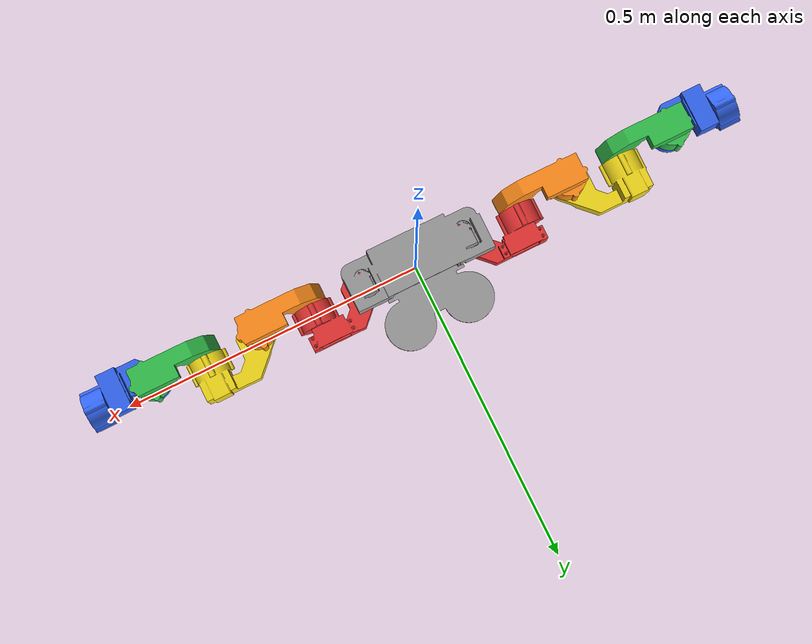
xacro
<?xml version="1.0"?>
<robot xmlns:xacro="http://www.ros.org/wiki/xacro" name="ASOW">
    <xacro:arg name="initial_positions_file" default="initial_positions.yaml" />

    <!-- Import ASOW urdf file -->
    <xacro:include filename="$(find asow_hw_description)/urdf/asow_robot.urdf" />

    <!-- Import control_xacro -->
    <xacro:include filename="ASOW.ros2_control.xacro" />

    <xacro:ASOW_ros2_control name="FakeSystem" initial_positions_file="$(arg initial_positions_file)"/>

</robot>

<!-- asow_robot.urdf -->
<robot name="ASOW">
  <link name="base_link">
    <inertial>
      <origin xyz="-5.748956981403833e-16 0.0005229651779704818 0.08470785357860047" rpy="0.0 0.0 0.0" />
      <mass value="3.3530847884984594" />
      <inertia ixx="0.005417359290214696" iyy="0.01900395973407412" izz="0.020616482208668133" ixy="-5.457545054875558e-16" iyz="0.00031338892895772086" ixz="-2.2640320512294876e-17" />
    </inertial>
    <visual name="base_link_visual">
      <origin xyz="0.0 0.0 0.0" rpy="0.0 -0.0 0.0" />
      <geometry>
        <mesh filename="package://asow_hw_description/meshes/base_link.stl" scale="0.001 0.001 0.001" />
      </geometry>
      <material name="base_link_color">
        <color rgba="0.6 0.6 0.6 1.0" />
      </material>
    </visual>
    <collision name="base_link_collision">
      <origin xyz="0.0 0.0 0.0" rpy="0.0 -0.0 0.0" />
      <geometry>
        <mesh filename="package://asow_hw_description/meshes/base_link.stl" scale="0.001 0.001 0.001" />
      </geometry>
    </collision>
  </link>
  <link name="left_link1">
    <inertial>
      <origin xyz="0.05083817545162827 -0.027802245360105397 0.006352722914272171" rpy="0.0 -0.0 0.0" />
      <mass value="1.3753654828756954" />
      <inertia ixx="0.001001600350153288" iyy="0.0024802704729061514" izz="0.0030065561069969327" ixy="0.000443216054170365" iyz="3.1467407996623765e-05" ixz="0.00017022184384626014" />
    </inertial>
    <visual name="left_link1_visual">
      <origin xyz="-0.086 -0.012 0.05" rpy="3.141592653589793 -0.0 0.0" />
      <geometry>
        <mesh filename="package://asow_hw_description/meshes/left_link1.stl" scale="0.001 0.001 0.001" />
      </geometry>
      <material name="left_link1_color">
        <color rgba="0.90 0.20 0.20 1.0" />
      </material>
    </visual>
    <collision name="left_link1_collision">
      <origin xyz="-0.086 -0.012 0.05" rpy="3.141592653589793 -0.0 0.0" />
      <geometry>
        <mesh filename="package://asow_hw_description/meshes/left_link1.stl" scale="0.001 0.001 0.001" />
      </geometry>
    </collision>
  </link>
  <link name="left_link2">
    <inertial>
      <origin xyz="0.04604438155646559 0.030950389119727594 0.007004735923152159" rpy="0.0 -0.0 0.0" />
      <mass value="1.8481663189081778" />
      <inertia ixx="0.0014192826517081623" iyy="0.0034878899348200904" izz="0.004288862076618008" ixy="-0.0006940038661520168" iyz="6.669377825128595e-05" ixz="0.0003796464629083219" />
    </inertial>
    <visual name="left_link2_visual">
      <origin xyz="-0.17600000000000002 -0.05 -0.012" rpy="-1.5707963267948966 -0.0 0.0" />
      <geometry>
        <mesh filename="package://asow_hw_description/meshes/left_link2.stl" scale="0.001 0.001 0.001" />
      </geometry>
      <material name="left_link2_color">
        <color rgba="1.00 0.55 0.10 1.0" />
      </material>
    </visual>
    <collision name="left_link2_collision">
      <origin xyz="-0.17600000000000002 -0.05 -0.012" rpy="-1.5707963267948966 -0.0 0.0" />
      <geometry>
        <mesh filename="package://asow_hw_description/meshes/left_link2.stl" scale="0.001 0.001 0.001" />
      </geometry>
    </collision>
  </link>
  <link name="left_link3">
    <inertial>
      <origin xyz="0.06114237030454298 -0.034086052260862226 0.002735551927064579" rpy="0.0 -0.0 0.0" />
      <mass value="1.8530750418168809" />
      <inertia ixx="0.0014489561836014287" iyy="0.003278827735866796" izz="0.0038769728435710804" ixy="0.0007829979749299203" iyz="-0.00010002348383215736" ixz="0.0003921616126917639" />
    </inertial>
    <visual name="left_link3_visual">
      <origin xyz="-0.266 -0.012 0.05" rpy="3.141592653589793 -0.0 0.0" />
      <geometry>
        <mesh filename="package://asow_hw_description/meshes/left_link3.stl" scale="0.001 0.001 0.001" />
      </geometry>
      <material name="left_link3_color">
        <color rgba="0.95 0.85 0.10 1.0" />
      </material>
    </visual>
    <collision name="left_link3_collision">
      <origin xyz="-0.266 -0.012 0.05" rpy="3.141592653589793 -0.0 0.0" />
      <geometry>
        <mesh filename="package://asow_hw_description/meshes/left_link3.stl" scale="0.001 0.001 0.001" />
      </geometry>
    </collision>
  </link>
  <link name="left_link4">
    <inertial>
      <origin xyz="0.04604438155646541 0.030950389119727594 0.007004735923152166" rpy="0.0 -0.0 0.0" />
      <mass value="1.8481663189081756" />
      <inertia ixx="0.0014192826517081605" iyy="0.003487889934820243" izz="0.004288862076618161" ixy="-0.0006940038661520445" iyz="6.669377825128638e-05" ixz="0.00037964646290832363" />
    </inertial>
    <visual name="left_link4_visual">
      <origin xyz="-0.35600000000000004 -0.05 -0.012" rpy="-1.5707963267948966 -0.0 0.0" />
      <geometry>
        <mesh filename="package://asow_hw_description/meshes/left_link4.stl" scale="0.001 0.001 0.001" />
      </geometry>
      <material name="left_link4_color">
        <color rgba="0.20 0.75 0.30 1.0" />
      </material>
    </visual>
    <collision name="left_link4_collision">
      <origin xyz="-0.35600000000000004 -0.05 -0.012" rpy="-1.5707963267948966 -0.0 0.0" />
      <geometry>
        <mesh filename="package://asow_hw_description/meshes/left_link4.stl" scale="0.001 0.001 0.001" />
      </geometry>
    </collision>
  </link>
  <link name="left_link5">
    <inertial>
      <origin xyz="0.04846888365841764 0.008723459357496053 0.003940050454827144" rpy="0.0 -0.0 0.0" />
      <mass value="1.6227219284701722" />
      <inertia ixx="0.0008366138867379573" iyy="0.0021823415398964374" izz="0.0025329850670380294" ixy="7.153665339515447e-05" iyz="-9.984343902119663e-06" ixz="0.0002175588366345807" />
    </inertial>
    <visual name="left_link5_visual">
      <origin xyz="-0.446 -0.012 0.05" rpy="3.141592653589793 -0.0 0.0" />
      <geometry>
        <mesh filename="package://asow_hw_description/meshes/left_link5.stl" scale="0.001 0.001 0.001" />
      </geometry>
      <material name="left_link5_color">
        <color rgba="0.20 0.40 0.95 1.0" />
      </material>
    </visual>
    <collision name="left_link5_collision">
      <origin xyz="-0.446 -0.012 0.05" rpy="3.141592653589793 -0.0 0.0" />
      <geometry>
        <mesh filename="package://asow_hw_description/meshes/left_link5.stl" scale="0.001 0.001 0.001" />
      </geometry>
    </collision>
  </link>
  <link name="right_link1">
    <inertial>
      <origin xyz="-0.050838175451628234 -0.0278022453601054 0.006352722914272162" rpy="0.0 -0.0 0.0" />
      <mass value="1.3753654828756956" />
      <inertia ixx="0.0010016003501532884" iyy="0.0024802704729061653" izz="0.003006556106996943" ixy="-0.0004432160541703654" iyz="3.1467407996623765e-05" ixz="-0.00017022184384625667" />
    </inertial>
    <visual name="right_link1_visual">
      <origin xyz="0.086 -0.012 0.05" rpy="3.141592653589793 -0.0 0.0" />
      <geometry>
        <mesh filename="package://asow_hw_description/meshes/right_link1.stl" scale="0.001 0.001 0.001" />
      </geometry>
      <material name="right_link1_color">
        <color rgba="0.90 0.20 0.20 1.0" />
      </material>
    </visual>
    <collision name="right_link1_collision">
      <origin xyz="0.086 -0.012 0.05" rpy="3.141592653589793 -0.0 0.0" />
      <geometry>
        <mesh filename="package://asow_hw_description/meshes/right_link1.stl" scale="0.001 0.001 0.001" />
      </geometry>
    </collision>
  </link>
  <link name="right_link2">
    <inertial>
      <origin xyz="-0.046044381556465626 0.030950389119727594 0.007004735923152157" rpy="0.0 -0.0 0.0" />
      <mass value="1.8481663189081778" />
      <inertia ixx="0.0014192826517081623" iyy="0.0034878899348200904" izz="0.004288862076618008" ixy="0.0006940038661520098" iyz="6.669377825128638e-05" ixz="-0.00037964646290832363" />
    </inertial>
    <visual name="right_link2_visual">
      <origin xyz="0.17600000000000002 -0.05 -0.012" rpy="-1.5707963267948966 -0.0 0.0" />
      <geometry>
        <mesh filename="package://asow_hw_description/meshes/right_link2.stl" scale="0.001 0.001 0.001" />
      </geometry>
      <material name="right_link2_color">
        <color rgba="1.00 0.55 0.10 1.0" />
      </material>
    </visual>
    <collision name="right_link2_collision">
      <origin xyz="0.17600000000000002 -0.05 -0.012" rpy="-1.5707963267948966 -0.0 0.0" />
      <geometry>
        <mesh filename="package://asow_hw_description/meshes/right_link2.stl" scale="0.001 0.001 0.001" />
      </geometry>
    </collision>
  </link>
  <link name="right_link3">
    <inertial>
      <origin xyz="-0.06114237030454298 -0.034086052260862226 0.002735551927064579" rpy="0.0 -0.0 0.0" />
      <mass value="1.8530750418168809" />
      <inertia ixx="0.0014489561836014304" iyy="0.003278827735866796" izz="0.0038769728435710804" ixy="-0.0007829979749299186" iyz="-0.00010002348383215736" ixz="-0.0003921616126917604" />
    </inertial>
    <visual name="right_link3_visual">
      <origin xyz="0.266 -0.012 0.05" rpy="3.141592653589793 -0.0 0.0" />
      <geometry>
        <mesh filename="package://asow_hw_description/meshes/right_link3.stl" scale="0.001 0.001 0.001" />
      </geometry>
      <material name="right_link3_color">
        <color rgba="0.95 0.85 0.10 1.0" />
      </material>
    </visual>
    <collision name="right_link3_collision">
      <origin xyz="0.266 -0.012 0.05" rpy="3.141592653589793 -0.0 0.0" />
      <geometry>
        <mesh filename="package://asow_hw_description/meshes/right_link3.stl" scale="0.001 0.001 0.001" />
      </geometry>
    </collision>
  </link>
  <link name="right_link4">
    <inertial>
      <origin xyz="-0.04604438155646541 0.030950389119727594 0.007004735923152166" rpy="0.0 -0.0 0.0" />
      <mass value="1.8481663189081756" />
      <inertia ixx="0.0014192826517081605" iyy="0.003487889934820243" izz="0.004288862076618161" ixy="0.0006940038661520306" iyz="6.669377825128595e-05" ixz="-0.0003796464629083167" />
    </inertial>
    <visual name="right_link4_visual">
      <origin xyz="0.35600000000000004 -0.05 -0.012" rpy="-1.5707963267948966 -0.0 0.0" />
      <geometry>
        <mesh filename="package://asow_hw_description/meshes/right_link4.stl" scale="0.001 0.001 0.001" />
      </geometry>
      <material name="right_link4_color">
        <color rgba="0.20 0.75 0.30 1.0" />
      </material>
    </visual>
    <collision name="right_link4_collision">
      <origin xyz="0.35600000000000004 -0.05 -0.012" rpy="-1.5707963267948966 -0.0 0.0" />
      <geometry>
        <mesh filename="package://asow_hw_description/meshes/right_link4.stl" scale="0.001 0.001 0.001" />
      </geometry>
    </collision>
  </link>
  <link name="right_link5">
    <inertial>
      <origin xyz="-0.04846888365841778 0.008723459357496058 0.003940050454827126" rpy="0.0 -0.0 0.0" />
      <mass value="1.6227219284701717" />
      <inertia ixx="0.0008366138867379538" iyy="0.002182341539896271" izz="0.0025329850670378073" ixy="-7.153665339515447e-05" iyz="-9.984343902120097e-06" ixz="-0.00021755883663455988" />
    </inertial>
    <visual name="right_link5_visual">
      <origin xyz="0.446 -0.012 0.05" rpy="3.141592653589793 -0.0 0.0" />
      <geometry>
        <mesh filename="package://asow_hw_description/meshes/right_link5.stl" scale="0.001 0.001 0.001" />
      </geometry>
      <material name="right_link5_color">
        <color rgba="0.20 0.40 0.95 1.0" />
      </material>
    </visual>
    <collision name="right_link5_collision">
      <origin xyz="0.446 -0.012 0.05" rpy="3.141592653589793 -0.0 0.0" />
      <geometry>
        <mesh filename="package://asow_hw_description/meshes/right_link5.stl" scale="0.001 0.001 0.001" />
      </geometry>
    </collision>
  </link>
  <joint name="left_joint1" type="revolute">
    <origin xyz="0.086 -0.012 0.05" rpy="3.141592653589793 -0.0 0.0" />
    <parent link="base_link" />
    <child link="left_link1" />
    <axis xyz="0.0 0.0 1.0" />
    <limit lower="-0.523599" upper="1.570796" effort="100.0" velocity="3.14" />
    <dynamics damping="0.1" friction="0.0" />
  </joint>
  <joint name="left_joint2" type="revolute">
    <origin xyz="0.09000000000000002 0.0 0.0" rpy="-1.5707963267948966 -0.0 0.0" />
    <parent link="left_link1" />
    <child link="left_link2" />
    <axis xyz="0.0 0.0 1.0" />
    <limit lower="-1.570796" upper="1.570796" effort="100.0" velocity="3.14" />
    <dynamics damping="0.1" friction="0.0" />
  </joint>
  <joint name="left_joint3" type="revolute">
    <origin xyz="0.09 0.0 0.0" rpy="1.5707963267948966 -0.0 0.0" />
    <parent link="left_link2" />
    <child link="left_link3" />
    <axis xyz="0.0 0.0 1.0" />
    <limit lower="-1.570796" upper="1.570796" effort="100.0" velocity="3.14" />
    <dynamics damping="0.1" friction="0.0" />
  </joint>
  <joint name="left_joint4" type="revolute">
    <origin xyz="0.09 0.0 0.0" rpy="-1.5707963267948966 -0.0 0.0" />
    <parent link="left_link3" />
    <child link="left_link4" />
    <axis xyz="0.0 0.0 1.0" />
    <limit lower="-1.570796" upper="1.570796" effort="100.0" velocity="3.14" />
    <dynamics damping="0.1" friction="0.0" />
  </joint>
  <joint name="left_joint5" type="revolute">
    <origin xyz="0.09 0.0 0.0" rpy="1.5707963267948966 -0.0 0.0" />
    <parent link="left_link4" />
    <child link="left_link5" />
    <axis xyz="0.0 0.0 1.0" />
    <limit lower="-1.570796" upper="1.570796" effort="100.0" velocity="3.14" />
    <dynamics damping="0.1" friction="0.0" />
  </joint>
  <joint name="right_joint1" type="revolute">
    <origin xyz="-0.086 -0.012 0.05" rpy="3.141592653589793 -0.0 0.0" />
    <parent link="base_link" />
    <child link="right_link1" />
    <axis xyz="0.0 0.0 1.0" />
    <limit lower="-1.570796" upper="0.523599" effort="100.0" velocity="3.14" />
    <dynamics damping="0.1" friction="0.0" />
  </joint>
  <joint name="right_joint2" type="revolute">
    <origin xyz="-0.09000000000000002 0.0 0.0" rpy="-1.5707963267948966 -0.0 0.0" />
    <parent link="right_link1" />
    <child link="right_link2" />
    <axis xyz="0.0 0.0 1.0" />
    <limit lower="-1.570796" upper="1.570796" effort="100.0" velocity="3.14" />
    <dynamics damping="0.1" friction="0.0" />
  </joint>
  <joint name="right_joint3" type="revolute">
    <origin xyz="-0.09 0.0 0.0" rpy="1.5707963267948966 -0.0 0.0" />
    <parent link="right_link2" />
    <child link="right_link3" />
    <axis xyz="0.0 0.0 1.0" />
    <limit lower="-1.570796" upper="1.570796" effort="100.0" velocity="3.14" />
    <dynamics damping="0.1" friction="0.0" />
  </joint>
  <joint name="right_joint4" type="revolute">
    <origin xyz="-0.09 0.0 0.0" rpy="-1.5707963267948966 -0.0 0.0" />
    <parent link="right_link3" />
    <child link="right_link4" />
    <axis xyz="0.0 0.0 1.0" />
    <limit lower="-1.570796" upper="1.570796" effort="100.0" velocity="3.14" />
    <dynamics damping="0.1" friction="0.0" />
  </joint>
  <joint name="right_joint5" type="revolute">
    <origin xyz="-0.09 0.0 0.0" rpy="1.5707963267948966 -0.0 0.0" />
    <parent link="right_link4" />
    <child link="right_link5" />
    <axis xyz="0.0 0.0 1.0" />
    <limit lower="-1.570796" upper="1.570796" effort="100.0" velocity="3.14" />
    <dynamics damping="0.1" friction="0.0" />
  </joint>
  <link name="left_tool0" />
  <joint name="left_tool0_joint" type="fixed">
    <parent link="left_link5" />
    <child link="left_tool0" />
    <origin xyz="0 0 0" rpy="0 0 0" />
  </joint>
  <link name="right_tool0" />
  <joint name="right_tool0_joint" type="fixed">
    <parent link="right_link5" />
    <child link="right_tool0" />
    <origin xyz="0 0 0" rpy="0 0 0" />
  </joint>
</robot>
